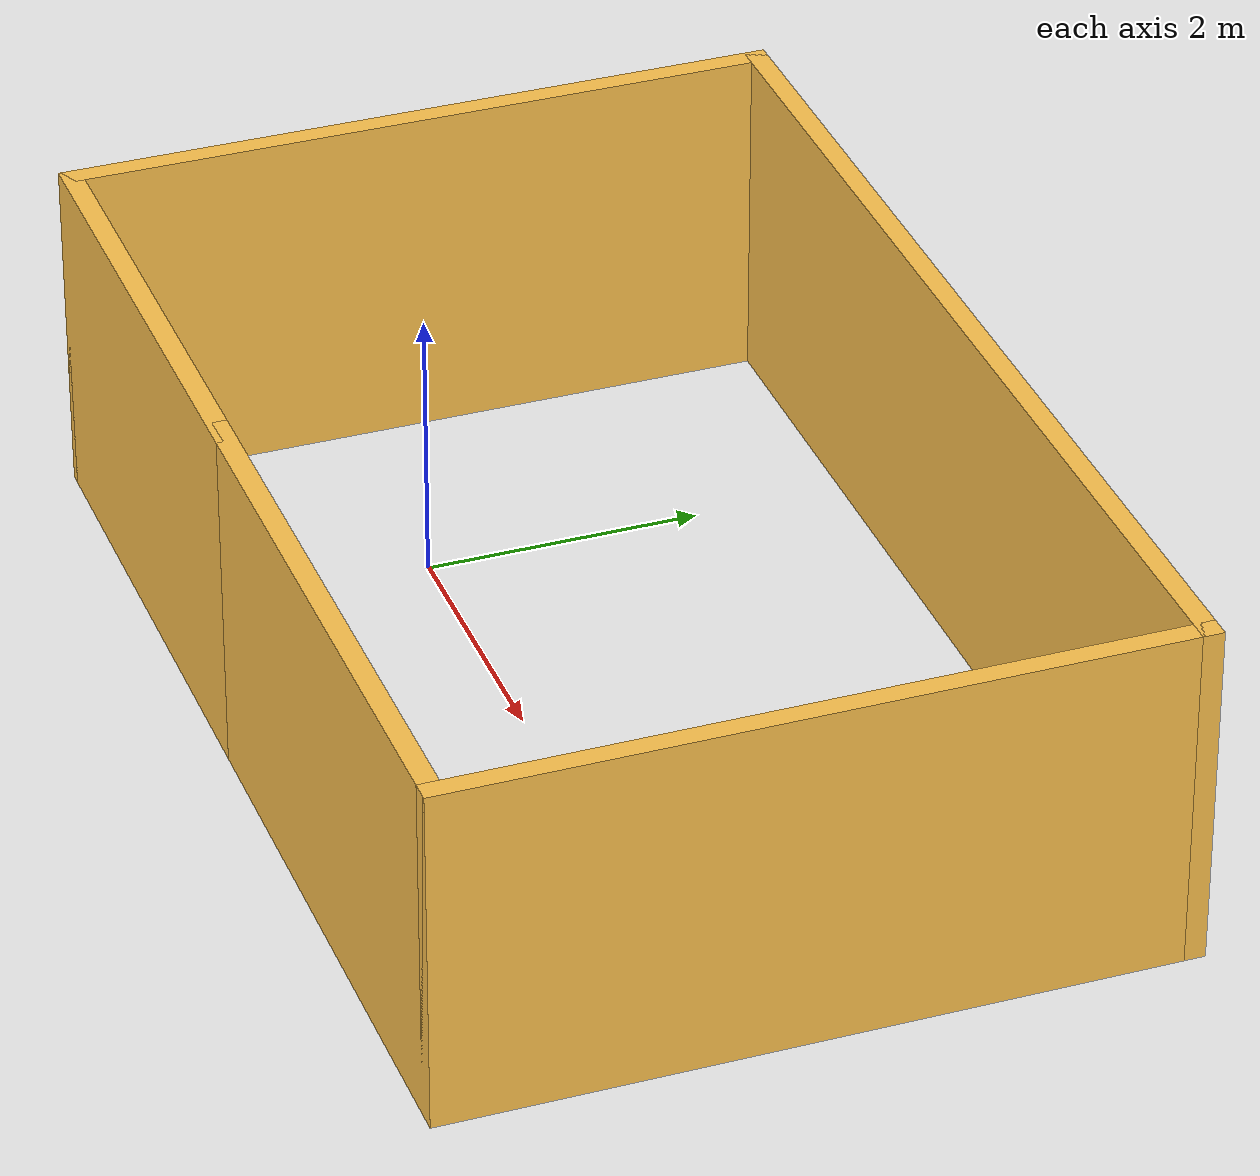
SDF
<?xml version='1.0'?>
<sdf version='1.7'>
  <model name='small_room'>
    <pose>2.005 0.62 0 0 -0 0</pose>
    <link name='Wall_0'>
      <collision name='Wall_0_Collision'>
        <geometry>
          <box>
            <size>4.5 0.15 2.5</size>
          </box>
        </geometry>
        <pose>0 0 1.25 0 -0 0</pose>
      </collision>
      <visual name='Wall_0_Visual'>
        <pose>0 0 1.25 0 -0 0</pose>
        <geometry>
          <box>
            <size>4.5 0.15 2.5</size>
          </box>
        </geometry>
        <material>
          <script>
            <uri>file://media/materials/scripts/gazebo.material</uri>
            <name>Gazebo/Grey</name>
          </script>
          <ambient>1 0.764706 0.305882 1</ambient>
        </material>
        <meta>
          <layer>0</layer>
        </meta>
      </visual>
      <pose>1.75 -2.55 0 0 -0 0</pose>
    </link>
    <link name='Wall_1'>
      <collision name='Wall_1_Collision'>
        <geometry>
          <box>
            <size>5.25 0.15 2.5</size>
          </box>
        </geometry>
        <pose>0 0 1.25 0 -0 0</pose>
      </collision>
      <visual name='Wall_1_Visual'>
        <pose>0 0 1.25 0 -0 0</pose>
        <geometry>
          <box>
            <size>5.25 0.15 2.5</size>
          </box>
        </geometry>
        <material>
          <script>
            <uri>file://media/materials/scripts/gazebo.material</uri>
            <name>Gazebo/Grey</name>
          </script>
          <ambient>1 0.764706 0.305882 1</ambient>
        </material>
        <meta>
          <layer>0</layer>
        </meta>
      </visual>
      <pose>3.925 -0 0 0 -0 1.5708</pose>
    </link>
    <link name='Wall_2'>
      <collision name='Wall_2_Collision'>
        <geometry>
          <box>
            <size>8 0.15 2.5</size>
          </box>
        </geometry>
        <pose>0 0 1.25 0 -0 0</pose>
      </collision>
      <visual name='Wall_2_Visual'>
        <pose>0 0 1.25 0 -0 0</pose>
        <geometry>
          <box>
            <size>8 0.15 2.5</size>
          </box>
        </geometry>
        <material>
          <script>
            <uri>file://media/materials/scripts/gazebo.material</uri>
            <name>Gazebo/Grey</name>
          </script>
          <ambient>1 0.764706 0.305882 1</ambient>
        </material>
        <meta>
          <layer>0</layer>
        </meta>
      </visual>
      <pose>0 2.55 0 0 -0 3.14159</pose>
    </link>
    <link name='Wall_3'>
      <collision name='Wall_3_Collision'>
        <geometry>
          <box>
            <size>5.25 0.15 2.5</size>
          </box>
        </geometry>
        <pose>0 0 1.25 0 -0 0</pose>
      </collision>
      <visual name='Wall_3_Visual'>
        <pose>0 0 1.25 0 -0 0</pose>
        <geometry>
          <box>
            <size>5.25 0.15 2.5</size>
          </box>
        </geometry>
        <material>
          <script>
            <uri>file://media/materials/scripts/gazebo.material</uri>
            <name>Gazebo/Grey</name>
          </script>
          <ambient>1 0.764706 0.305882 1</ambient>
        </material>
        <meta>
          <layer>0</layer>
        </meta>
      </visual>
      <pose>-3.925 -0 0 0 -0 -1.5708</pose>
    </link>
    <link name='Wall_4'>
      <collision name='Wall_4_Collision'>
        <geometry>
          <box>
            <size>3.75 0.15 2.5</size>
          </box>
        </geometry>
        <pose>0 0 1.25 0 -0 0</pose>
      </collision>
      <visual name='Wall_4_Visual'>
        <pose>0 0 1.25 0 -0 0</pose>
        <geometry>
          <box>
            <size>3.75 0.15 2.5</size>
          </box>
        </geometry>
        <material>
          <script>
            <uri>file://media/materials/scripts/gazebo.material</uri>
            <name>Gazebo/Grey</name>
          </script>
          <ambient>1 0.764706 0.305882 1</ambient>
        </material>
        <meta>
          <layer>0</layer>
        </meta>
      </visual>
      <pose>-2.125 -2.55 0 0 -0 0</pose>
    </link>
    <static>1</static>
  </model>
</sdf>
